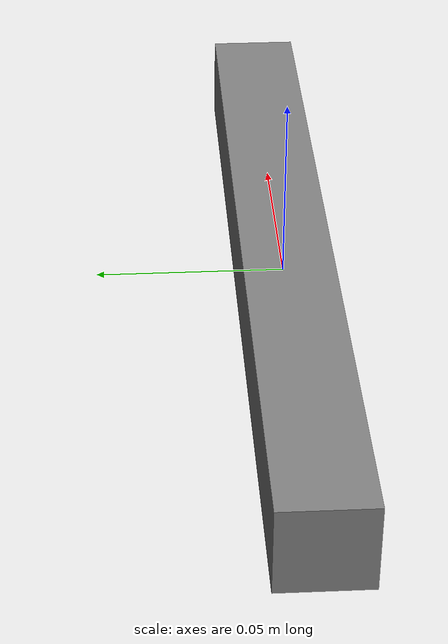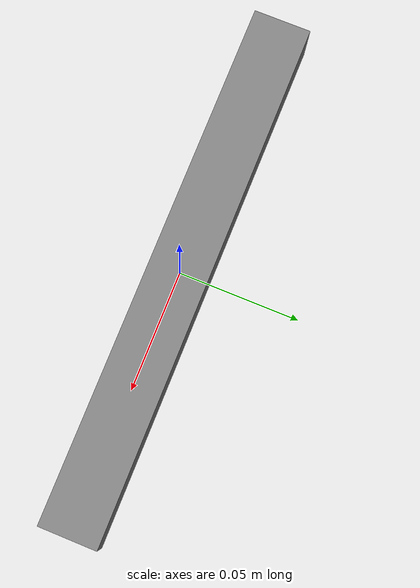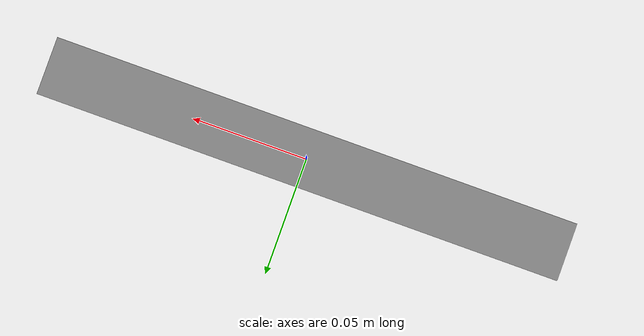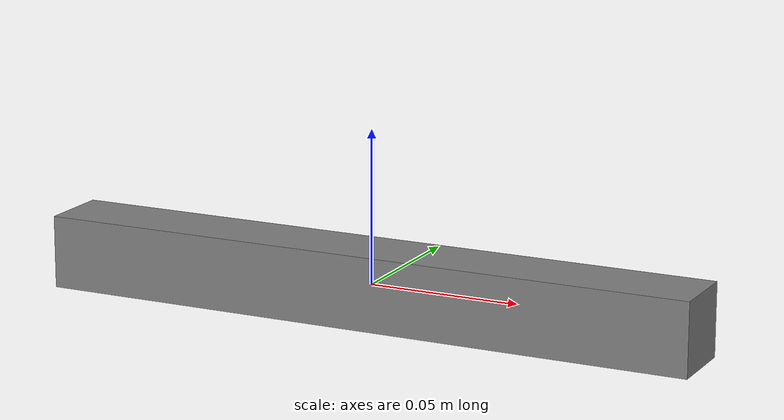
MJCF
<mujoco model="vla82_vla82_041">
  <compiler angle="radian"/>
  <asset>
    <texture name="source_texture" type="2d" file="source_texture.png"/>
    <material name="source_material" texture="source_texture" rgba="1 1 1 1"/>
  </asset>
  <default>
    <default class="visual"><geom contype="0" conaffinity="0" group="1"/></default>
    <default class="collision"><geom contype="1" conaffinity="1" group="0" density="300" friction="0.45 0.004 0.0001" solref="0.02 1" solimp="0.9 0.95 0.001"/></default>
    <default class="region"><geom contype="0" conaffinity="0" group="1" rgba="0 1 0 0" mass="0"/></default>
  </default>
  <worldbody><body><body name="object">
    <geom name="spoon_bowl" class="visual" mass="0" type="ellipsoid" pos="-0.075 0 0" size="0.032 0.011 0.0055" rgba="0.82 0.85 0.88 1"/>
    <geom name="spoon_bowl_inner" class="visual" mass="0" type="ellipsoid" pos="-0.075 0 0.003" size="0.025 0.008 0.002" rgba="0.38 0.42 0.47 1"/>
    <geom name="spoon_neck" class="visual" mass="0" type="capsule" pos="-0.040 0 0" size="0.0035 0.018" quat="0.7071068 0 0.7071068 0" rgba="0.72 0.76 0.80 1"/>
    <geom name="spoon_handle" class="visual" mass="0" type="cylinder" pos="0.034 0 0" size="0.0045 0.070" quat="0.7071068 0 0.7071068 0" rgba="0.68 0.72 0.77 1"/>
    <geom name="spoon_handle_highlight" class="visual" mass="0" type="box" pos="0.034 -0.004 0.002" size="0.066 0.0008 0.0008" rgba="0.95 0.97 0.99 1"/>
    <geom name="legacy_visual_mass_carrier" class="visual" type="box" size="0.110000 0.012000 0.012000" mass="0.126720000" rgba="0 0 0 0"/>
    <geom name="collision" class="collision" type="box" size="0.110000 0.012000 0.012000"/>
    <geom name="reg_bbox" class="region" type="box" pos="0 0 0" size="0.110000 0.012000 0.012000"/>
  </body></body></worldbody>
  <actuator/>
</mujoco>
